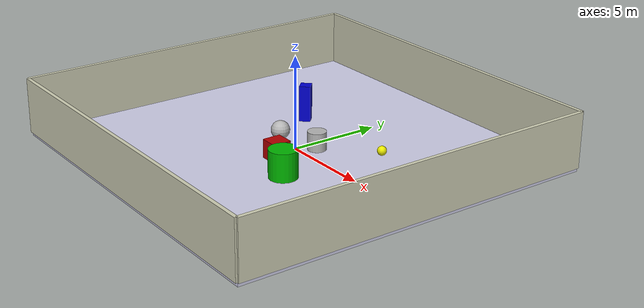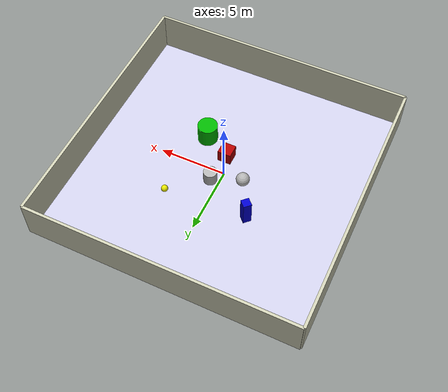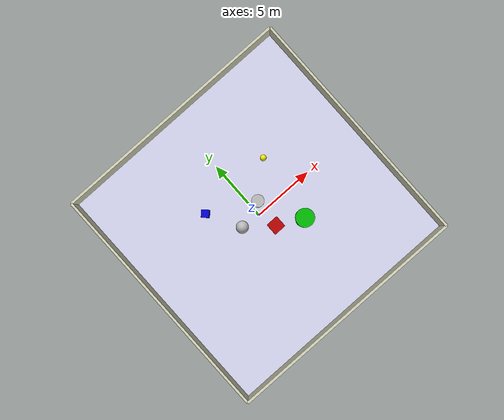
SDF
<sdf version='1.9'>
  <world name='enhanced_world'>
    <physics name='1ms' type='ignored'>
      <max_step_size>0.001</max_step_size>
      <real_time_factor>1</real_time_factor>
      <real_time_update_rate>1000</real_time_update_rate>
    </physics>
    <plugin name='gz::sim::systems::Physics' filename='ignition-gazebo-physics-system'/>
    <plugin name='gz::sim::systems::UserCommands' filename='ignition-gazebo-user-commands-system'/>
    <plugin name='gz::sim::systems::SceneBroadcaster' filename='ignition-gazebo-scene-broadcaster-system'/>
    <plugin name='gz::sim::systems::Contact' filename='ignition-gazebo-contact-system'/>
    <gravity>0 0 -9.8</gravity>
    <magnetic_field>6e-06 2.3e-05 -4.2e-05</magnetic_field>
    <atmosphere type='adiabatic'/>
    <scene>
      <ambient>0.4 0.4 0.4 1</ambient>
      <background>0.7 0.7 0.7 1</background>
      <shadows>true</shadows>
    </scene>

    <!-- Enhanced Floor -->
    <model name='floor'>
      <static>true</static>
      <link name='link'>
        <collision name='collision'>
          <geometry>
            <box>
              <size>20 20 0.2</size>
            </box>
          </geometry>
          <surface>
            <friction>
              <ode>
                <mu>1.0</mu>
                <mu2>1.0</mu2>
              </ode>
            </friction>
            <bounce/>
            <contact/>
          </surface>
        </collision>
        <visual name='visual'>
          <geometry>
            <box>
              <size>20 20 0.2</size>
            </box>
          </geometry>
          <material>
            <ambient>0.5 0.5 0.6 1</ambient>
            <diffuse>0.8 0.8 0.9 1</diffuse>
            <specular>0.3 0.3 0.3 1</specular>
          </material>
        </visual>
        <pose>0 0 -0.1 0 0 0</pose>
        <inertial>
          <pose>0 0 0 0 0 0</pose>
          <mass>1</mass>
          <inertia>
            <ixx>1</ixx>
            <ixy>0</ixy>
            <ixz>0</ixz>
            <iyy>1</iyy>
            <iyz>0</iyz>
            <izz>1</izz>
          </inertia>
        </inertial>
        <enable_wind>false</enable_wind>
      </link>
      <pose>0 0 0 0 0 0</pose>
      <self_collide>false</self_collide>
    </model>

    <!-- Wall 1 - North -->
    <model name='wall_north'>
      <static>true</static>
      <link name='link'>
        <collision name='collision'>
          <geometry>
            <box>
              <size>20 0.2 3</size>
            </box>
          </geometry>
          <surface>
            <friction>
              <ode/>
            </friction>
            <bounce/>
            <contact/>
          </surface>
        </collision>
        <visual name='visual'>
          <geometry>
            <box>
              <size>20 0.2 3</size>
            </box>
          </geometry>
          <material>
            <ambient>0.6 0.6 0.5 1</ambient>
            <diffuse>0.8 0.8 0.7 1</diffuse>
            <specular>0.2 0.2 0.2 1</specular>
          </material>
        </visual>
        <pose>0 10 1.5 0 0 0</pose>
        <inertial>
          <pose>0 0 0 0 0 0</pose>
          <mass>1</mass>
          <inertia>
            <ixx>1</ixx>
            <ixy>0</ixy>
            <ixz>0</ixz>
            <iyy>1</iyy>
            <iyz>0</iyz>
            <izz>1</izz>
          </inertia>
        </inertial>
        <enable_wind>false</enable_wind>
      </link>
      <pose>0 0 0 0 0 0</pose>
      <self_collide>false</self_collide>
    </model>

    <!-- Wall 2 - South -->
    <model name='wall_south'>
      <static>true</static>
      <link name='link'>
        <collision name='collision'>
          <geometry>
            <box>
              <size>20 0.2 3</size>
            </box>
          </geometry>
          <surface>
            <friction>
              <ode/>
            </friction>
            <bounce/>
            <contact/>
          </surface>
        </collision>
        <visual name='visual'>
          <geometry>
            <box>
              <size>20 0.2 3</size>
            </box>
          </geometry>
          <material>
            <ambient>0.6 0.6 0.5 1</ambient>
            <diffuse>0.8 0.8 0.7 1</diffuse>
            <specular>0.2 0.2 0.2 1</specular>
          </material>
        </visual>
        <pose>0 -10 1.5 0 0 0</pose>
        <inertial>
          <pose>0 0 0 0 0 0</pose>
          <mass>1</mass>
          <inertia>
            <ixx>1</ixx>
            <ixy>0</ixy>
            <ixz>0</ixz>
            <iyy>1</iyy>
            <iyz>0</iyz>
            <izz>1</izz>
          </inertia>
        </inertial>
        <enable_wind>false</enable_wind>
      </link>
      <pose>0 0 0 0 0 0</pose>
      <self_collide>false</self_collide>
    </model>

    <!-- Wall 3 - East -->
    <model name='wall_east'>
      <static>true</static>
      <link name='link'>
        <collision name='collision'>
          <geometry>
            <box>
              <size>0.2 20 3</size>
            </box>
          </geometry>
          <surface>
            <friction>
              <ode/>
            </friction>
            <bounce/>
            <contact/>
          </surface>
        </collision>
        <visual name='visual'>
          <geometry>
            <box>
              <size>0.2 20 3</size>
            </box>
          </geometry>
          <material>
            <ambient>0.6 0.6 0.5 1</ambient>
            <diffuse>0.8 0.8 0.7 1</diffuse>
            <specular>0.2 0.2 0.2 1</specular>
          </material>
        </visual>
        <pose>10 0 1.5 0 0 0</pose>
        <inertial>
          <pose>0 0 0 0 0 0</pose>
          <mass>1</mass>
          <inertia>
            <ixx>1</ixx>
            <ixy>0</ixy>
            <ixz>0</ixz>
            <iyy>1</iyy>
            <iyz>0</iyz>
            <izz>1</izz>
          </inertia>
        </inertial>
        <enable_wind>false</enable_wind>
      </link>
      <pose>0 0 0 0 0 0</pose>
      <self_collide>false</self_collide>
    </model>

    <!-- Wall 4 - West -->
    <model name='wall_west'>
      <static>true</static>
      <link name='link'>
        <collision name='collision'>
          <geometry>
            <box>
              <size>0.2 20 3</size>
            </box>
          </geometry>
          <surface>
            <friction>
              <ode/>
            </friction>
            <bounce/>
            <contact/>
          </surface>
        </collision>
        <visual name='visual'>
          <geometry>
            <box>
              <size>0.2 20 3</size>
            </box>
          </geometry>
          <material>
            <ambient>0.6 0.6 0.5 1</ambient>
            <diffuse>0.8 0.8 0.7 1</diffuse>
            <specular>0.2 0.2 0.2 1</specular>
          </material>
        </visual>
        <pose>-10 0 1.5 0 0 0</pose>
        <inertial>
          <pose>0 0 0 0 0 0</pose>
          <mass>1</mass>
          <inertia>
            <ixx>1</ixx>
            <ixy>0</ixy>
            <ixz>0</ixz>
            <iyy>1</iyy>
            <iyz>0</iyz>
            <izz>1</izz>
          </inertia>
        </inertial>
        <enable_wind>false</enable_wind>
      </link>
      <pose>0 0 0 0 0 0</pose>
      <self_collide>false</self_collide>
    </model>

    <!-- Original Sphere -->
    <model name='sphere'>
      <pose>-1.57805 0.161142 0.5 0 -0 0</pose>
      <link name='sphere_link'>
        <inertial>
          <inertia>
            <ixx>0.10000000000000001</ixx>
            <ixy>0</ixy>
            <ixz>0</ixz>
            <iyy>0.10000000000000001</iyy>
            <iyz>0</iyz>
            <izz>0.10000000000000001</izz>
          </inertia>
          <mass>1</mass>
          <pose>0 0 0 0 -0 0</pose>
        </inertial>
        <collision name='sphere_collision'>
          <geometry>
            <sphere>
              <radius>0.5</radius>
            </sphere>
          </geometry>
          <surface>
            <friction>
              <ode/>
            </friction>
            <bounce/>
            <contact/>
          </surface>
        </collision>
        <visual name='sphere_visual'>
          <geometry>
            <sphere>
              <radius>0.5</radius>
            </sphere>
          </geometry>
          <material>
            <ambient>0.3 0.3 0.3 1</ambient>
            <diffuse>0.7 0.7 0.7 1</diffuse>
            <specular>1 1 1 1</specular>
          </material>
        </visual>
        <pose>0 0 0 0 -0 0</pose>
        <enable_wind>false</enable_wind>
      </link>
      <static>false</static>
      <self_collide>false</self_collide>
    </model>

    <!-- Original Box -->
    <model name='box'>
      <pose>0.449486 -1.464 0.499999 -0 0 0</pose>
      <link name='box_link'>
        <inertial>
          <inertia>
            <ixx>0.16666</ixx>
            <ixy>0</ixy>
            <ixz>0</ixz>
            <iyy>0.16666</iyy>
            <iyz>0</iyz>
            <izz>0.16666</izz>
          </inertia>
          <mass>1</mass>
          <pose>0 0 0 0 -0 0</pose>
        </inertial>
        <collision name='box_collision'>
          <geometry>
            <box>
              <size>1 1 1</size>
            </box>
          </geometry>
          <surface>
            <friction>
              <ode/>
            </friction>
            <bounce/>
            <contact/>
          </surface>
        </collision>
        <visual name='box_visual'>
          <geometry>
            <box>
              <size>1 1 1</size>
            </box>
          </geometry>
          <material>
              <ambient>0.3 0 0 1</ambient>
              <diffuse>0.7 0 0 1</diffuse>
              <specular>1 0 0 1</specular>
          </material>
        </visual>
        <pose>0 0 0 0 -0 0</pose>
        <enable_wind>false</enable_wind>
      </link>
      <static>false</static>
      <self_collide>false</self_collide>
    </model>

    <!-- Original Cylinder -->
    <model name='cylinder'>
      <pose>0.661075 0.878568 0.499999 -0 0 -0</pose>
      <link name='cylinder_link'>
        <inertial>
          <inertia>
            <ixx>0.14580000000000001</ixx>
            <ixy>0</ixy>
            <ixz>0</ixz>
            <iyy>0.14580000000000001</iyy>
            <iyz>0</iyz>
            <izz>0.125</izz>
          </inertia>
          <mass>1</mass>
          <pose>0 0 0 0 -0 0</pose>
        </inertial>
        <collision name='cylinder_collision'>
          <geometry>
            <cylinder>
              <radius>0.5</radius>
              <length>1</length>
            </cylinder>
          </geometry>
          <surface>
            <friction>
              <ode/>
            </friction>
            <bounce/>
            <contact/>
          </surface>
        </collision>
        <visual name='cylinder_visual'>
          <geometry>
            <cylinder>
              <radius>0.5</radius>
              <length>1</length>
            </cylinder>
          </geometry>
          <material>
            <ambient>0.3 0.3 0.3 1</ambient>
            <diffuse>0.7 0.7 0.7 1</diffuse>
            <specular>1 1 1 1</specular>
          </material>
        </visual>
        <pose>0 0 0 0 -0 0</pose>
        <enable_wind>false</enable_wind>
      </link>
      <static>false</static>
      <self_collide>false</self_collide>
    </model>

    <!-- New Element 1: Cone (using cylinder with different radii) -->
    <model name='cone'>
      <pose>2.5 -2.5 0.75 0 0 0</pose>
      <link name='cone_link'>
        <inertial>
          <inertia>
            <ixx>0.225</ixx>
            <ixy>0</ixy>
            <ixz>0</ixz>
            <iyy>0.225</iyy>
            <iyz>0</iyz>
            <izz>0.1875</izz>
          </inertia>
          <mass>1</mass>
          <pose>0 0 0 0 0 0</pose>
        </inertial>
        <collision name='cone_collision'>
          <geometry>
            <cylinder>
              <radius>0.75</radius>
              <length>1.5</length>
            </cylinder>
          </geometry>
          <surface>
            <friction>
              <ode/>
            </friction>
            <bounce/>
            <contact/>
          </surface>
        </collision>
        <visual name='cone_visual'>
          <geometry>
            <cylinder>
              <radius>0.75</radius>
              <length>1.5</length>
            </cylinder>
          </geometry>
          <material>
            <ambient>0 0.3 0 1</ambient>
            <diffuse>0 0.7 0 1</diffuse>
            <specular>0 1 0 1</specular>
          </material>
        </visual>
        <pose>0 0 0 0 0 0</pose>
        <enable_wind>false</enable_wind>
      </link>
      <static>false</static>
      <self_collide>false</self_collide>
    </model>

    <!-- New Element 2: Tall Rectangular Prism -->
    <model name='tall_prism'>
      <pose>-3 2.8 1 0 0 0.785</pose>
      <link name='prism_link'>
        <inertial>
          <inertia>
            <ixx>0.68333</ixx>
            <ixy>0</ixy>
            <ixz>0</ixz>
            <iyy>0.35000</iyy>
            <iyz>0</iyz>
            <izz>0.35000</izz>
          </inertia>
          <mass>1</mass>
          <pose>0 0 0 0 0 0</pose>
        </inertial>
        <collision name='prism_collision'>
          <geometry>
            <box>
              <size>0.6 0.6 2</size>
            </box>
          </geometry>
          <surface>
            <friction>
              <ode/>
            </friction>
            <bounce/>
            <contact/>
          </surface>
        </collision>
        <visual name='prism_visual'>
          <geometry>
            <box>
              <size>0.6 0.6 2</size>
            </box>
          </geometry>
          <material>
            <ambient>0 0 0.3 1</ambient>
            <diffuse>0 0 0.8 1</diffuse>
            <specular>0 0 1 1</specular>
          </material>
        </visual>
        <pose>0 0 0 0 0 0</pose>
        <enable_wind>false</enable_wind>
      </link>
      <static>false</static>
      <self_collide>false</self_collide>
    </model>

    <!-- New Element 3: Small Sphere -->
    <model name='small_sphere'>
      <pose>3.2 3.1 0.25 0 0 0</pose>
      <link name='small_sphere_link'>
        <inertial>
          <inertia>
            <ixx>0.025</ixx>
            <ixy>0</ixy>
            <ixz>0</ixz>
            <iyy>0.025</iyy>
            <iyz>0</iyz>
            <izz>0.025</izz>
          </inertia>
          <mass>1</mass>
          <pose>0 0 0 0 0 0</pose>
        </inertial>
        <collision name='small_sphere_collision'>
          <geometry>
            <sphere>
              <radius>0.25</radius>
            </sphere>
          </geometry>
          <surface>
            <friction>
              <ode/>
            </friction>
            <bounce/>
            <contact/>
          </surface>
        </collision>
        <visual name='small_sphere_visual'>
          <geometry>
            <sphere>
              <radius>0.25</radius>
            </sphere>
          </geometry>
          <material>
            <ambient>0.3 0.3 0 1</ambient>
            <diffuse>0.9 0.9 0 1</diffuse>
            <specular>1 1 0 1</specular>
          </material>
        </visual>
        <pose>0 0 0 0 0 0</pose>
        <enable_wind>false</enable_wind>
      </link>
      <static>false</static>
      <self_collide>false</self_collide>
    </model>

    <!-- Lighting -->
    <light name='sun' type='directional'>
      <pose>0 0 10 0 -0 0</pose>
      <cast_shadows>true</cast_shadows>
      <intensity>1</intensity>
      <direction>-0.5 0.1 -0.9</direction>
      <diffuse>0.8 0.8 0.8 1</diffuse>
      <specular>0.2 0.2 0.2 1</specular>
      <attenuation>
        <range>1000</range>
        <linear>0.01</linear>
        <constant>0.90000000000000002</constant>
        <quadratic>0.001</quadratic>
      </attenuation>
      <spot>
        <inner_angle>0</inner_angle>
        <outer_angle>0</outer_angle>
        <falloff>0</falloff>
      </spot>
    </light>

    <!-- Additional lighting for better visibility -->
    <light name='ambient_light' type='point'>
      <pose>0 0 5 0 0 0</pose>
      <cast_shadows>false</cast_shadows>
      <intensity>0.5</intensity>
      <diffuse>0.4 0.4 0.6 1</diffuse>
      <specular>0.1 0.1 0.1 1</specular>
      <attenuation>
        <range>20</range>
        <linear>0.01</linear>
        <constant>0.5</constant>
        <quadratic>0.001</quadratic>
      </attenuation>
    </light>

  </world>
</sdf>
